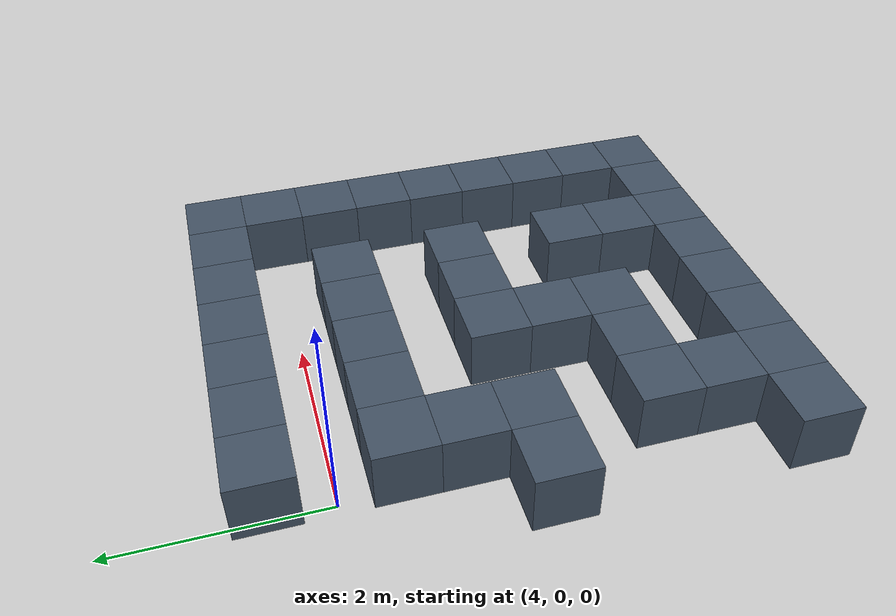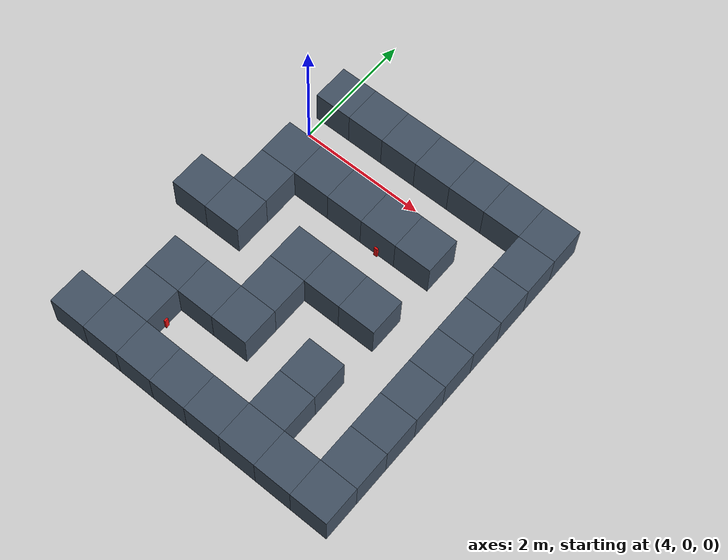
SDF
<sdf version="1.9">
 <world name="limo_maze">
  <model name="wall_8_0">
   <static>true</static>
   <pose>4.2 0.6 0.3 0 0 0</pose>
   <link name="body">
    <collision name="collision"><geometry><box><size>0.6 0.6 0.6</size></box></geometry></collision>
    <visual name="visual">
     <geometry><box><size>0.6 0.6 0.6</size></box></geometry>
     <material><ambient>0.26 0.32 0.39 1</ambient><diffuse>0.26 0.32 0.39 1</diffuse></material>
    </visual>
   </link>
  </model>
  <model name="wall_9_0">
   <static>true</static>
   <pose>4.8 0.6 0.3 0 0 0</pose>
   <link name="body">
    <collision name="collision"><geometry><box><size>0.6 0.6 0.6</size></box></geometry></collision>
    <visual name="visual">
     <geometry><box><size>0.6 0.6 0.6</size></box></geometry>
     <material><ambient>0.26 0.32 0.39 1</ambient><diffuse>0.26 0.32 0.39 1</diffuse></material>
    </visual>
   </link>
  </model>
  <model name="wall_10_0">
   <static>true</static>
   <pose>5.3999999999999995 0.6 0.3 0 0 0</pose>
   <link name="body">
    <collision name="collision"><geometry><box><size>0.6 0.6 0.6</size></box></geometry></collision>
    <visual name="visual">
     <geometry><box><size>0.6 0.6 0.6</size></box></geometry>
     <material><ambient>0.26 0.32 0.39 1</ambient><diffuse>0.26 0.32 0.39 1</diffuse></material>
    </visual>
   </link>
  </model>
  <model name="wall_11_0">
   <static>true</static>
   <pose>6.0 0.6 0.3 0 0 0</pose>
   <link name="body">
    <collision name="collision"><geometry><box><size>0.6 0.6 0.6</size></box></geometry></collision>
    <visual name="visual">
     <geometry><box><size>0.6 0.6 0.6</size></box></geometry>
     <material><ambient>0.26 0.32 0.39 1</ambient><diffuse>0.26 0.32 0.39 1</diffuse></material>
    </visual>
   </link>
  </model>
  <model name="wall_12_0">
   <static>true</static>
   <pose>6.6 0.6 0.3 0 0 0</pose>
   <link name="body">
    <collision name="collision"><geometry><box><size>0.6 0.6 0.6</size></box></geometry></collision>
    <visual name="visual">
     <geometry><box><size>0.6 0.6 0.6</size></box></geometry>
     <material><ambient>0.26 0.32 0.39 1</ambient><diffuse>0.26 0.32 0.39 1</diffuse></material>
    </visual>
   </link>
  </model>
  <model name="wall_13_0">
   <static>true</static>
   <pose>7.199999999999999 0.6 0.3 0 0 0</pose>
   <link name="body">
    <collision name="collision"><geometry><box><size>0.6 0.6 0.6</size></box></geometry></collision>
    <visual name="visual">
     <geometry><box><size>0.6 0.6 0.6</size></box></geometry>
     <material><ambient>0.26 0.32 0.39 1</ambient><diffuse>0.26 0.32 0.39 1</diffuse></material>
    </visual>
   </link>
  </model>
  <model name="wall_14_0">
   <static>true</static>
   <pose>7.8 0.6 0.3 0 0 0</pose>
   <link name="body">
    <collision name="collision"><geometry><box><size>0.6 0.6 0.6</size></box></geometry></collision>
    <visual name="visual">
     <geometry><box><size>0.6 0.6 0.6</size></box></geometry>
     <material><ambient>0.26 0.32 0.39 1</ambient><diffuse>0.26 0.32 0.39 1</diffuse></material>
    </visual>
   </link>
  </model>
  <model name="wall_14_1">
   <static>true</static>
   <pose>7.8 0.0 0.3 0 0 0</pose>
   <link name="body">
    <collision name="collision"><geometry><box><size>0.6 0.6 0.6</size></box></geometry></collision>
    <visual name="visual">
     <geometry><box><size>0.6 0.6 0.6</size></box></geometry>
     <material><ambient>0.26 0.32 0.39 1</ambient><diffuse>0.26 0.32 0.39 1</diffuse></material>
    </visual>
   </link>
  </model>
  <model name="wall_8_2">
   <static>true</static>
   <pose>4.2 -0.6 0.3 0 0 0</pose>
   <link name="body">
    <collision name="collision"><geometry><box><size>0.6 0.6 0.6</size></box></geometry></collision>
    <visual name="visual">
     <geometry><box><size>0.6 0.6 0.6</size></box></geometry>
     <material><ambient>0.26 0.32 0.39 1</ambient><diffuse>0.26 0.32 0.39 1</diffuse></material>
    </visual>
   </link>
  </model>
  <model name="wall_9_2">
   <static>true</static>
   <pose>4.8 -0.6 0.3 0 0 0</pose>
   <link name="body">
    <collision name="collision"><geometry><box><size>0.6 0.6 0.6</size></box></geometry></collision>
    <visual name="visual">
     <geometry><box><size>0.6 0.6 0.6</size></box></geometry>
     <material><ambient>0.26 0.32 0.39 1</ambient><diffuse>0.26 0.32 0.39 1</diffuse></material>
    </visual>
   </link>
  </model>
  <model name="wall_10_2">
   <static>true</static>
   <pose>5.3999999999999995 -0.6 0.3 0 0 0</pose>
   <link name="body">
    <collision name="collision"><geometry><box><size>0.6 0.6 0.6</size></box></geometry></collision>
    <visual name="visual">
     <geometry><box><size>0.6 0.6 0.6</size></box></geometry>
     <material><ambient>0.26 0.32 0.39 1</ambient><diffuse>0.26 0.32 0.39 1</diffuse></material>
    </visual>
   </link>
  </model>
  <model name="wall_11_2">
   <static>true</static>
   <pose>6.0 -0.6 0.3 0 0 0</pose>
   <link name="body">
    <collision name="collision"><geometry><box><size>0.6 0.6 0.6</size></box></geometry></collision>
    <visual name="visual">
     <geometry><box><size>0.6 0.6 0.6</size></box></geometry>
     <material><ambient>0.26 0.32 0.39 1</ambient><diffuse>0.26 0.32 0.39 1</diffuse></material>
    </visual>
   </link>
  </model>
  <model name="wall_12_2">
   <static>true</static>
   <pose>6.6 -0.6 0.3 0 0 0</pose>
   <link name="body">
    <collision name="collision"><geometry><box><size>0.6 0.6 0.6</size></box></geometry></collision>
    <visual name="visual">
     <geometry><box><size>0.6 0.6 0.6</size></box></geometry>
     <material><ambient>0.26 0.32 0.39 1</ambient><diffuse>0.26 0.32 0.39 1</diffuse></material>
    </visual>
   </link>
  </model>
  <model name="wall_14_2">
   <static>true</static>
   <pose>7.8 -0.6 0.3 0 0 0</pose>
   <link name="body">
    <collision name="collision"><geometry><box><size>0.6 0.6 0.6</size></box></geometry></collision>
    <visual name="visual">
     <geometry><box><size>0.6 0.6 0.6</size></box></geometry>
     <material><ambient>0.26 0.32 0.39 1</ambient><diffuse>0.26 0.32 0.39 1</diffuse></material>
    </visual>
   </link>
  </model>
  <model name="wall_8_3">
   <static>true</static>
   <pose>4.2 -1.2 0.3 0 0 0</pose>
   <link name="body">
    <collision name="collision"><geometry><box><size>0.6 0.6 0.6</size></box></geometry></collision>
    <visual name="visual">
     <geometry><box><size>0.6 0.6 0.6</size></box></geometry>
     <material><ambient>0.26 0.32 0.39 1</ambient><diffuse>0.26 0.32 0.39 1</diffuse></material>
    </visual>
   </link>
  </model>
  <model name="wall_14_3">
   <static>true</static>
   <pose>7.8 -1.2 0.3 0 0 0</pose>
   <link name="body">
    <collision name="collision"><geometry><box><size>0.6 0.6 0.6</size></box></geometry></collision>
    <visual name="visual">
     <geometry><box><size>0.6 0.6 0.6</size></box></geometry>
     <material><ambient>0.26 0.32 0.39 1</ambient><diffuse>0.26 0.32 0.39 1</diffuse></material>
    </visual>
   </link>
  </model>
  <model name="wall_7_4">
   <static>true</static>
   <pose>3.5999999999999996 -1.7999999999999998 0.3 0 0 0</pose>
   <link name="body">
    <collision name="collision"><geometry><box><size>0.6 0.6 0.6</size></box></geometry></collision>
    <visual name="visual">
     <geometry><box><size>0.6 0.6 0.6</size></box></geometry>
     <material><ambient>0.26 0.32 0.39 1</ambient><diffuse>0.26 0.32 0.39 1</diffuse></material>
    </visual>
   </link>
  </model>
  <model name="wall_8_4">
   <static>true</static>
   <pose>4.2 -1.7999999999999998 0.3 0 0 0</pose>
   <link name="body">
    <collision name="collision"><geometry><box><size>0.6 0.6 0.6</size></box></geometry></collision>
    <visual name="visual">
     <geometry><box><size>0.6 0.6 0.6</size></box></geometry>
     <material><ambient>0.26 0.32 0.39 1</ambient><diffuse>0.26 0.32 0.39 1</diffuse></material>
    </visual>
   </link>
  </model>
  <model name="wall_10_4">
   <static>true</static>
   <pose>5.3999999999999995 -1.7999999999999998 0.3 0 0 0</pose>
   <link name="body">
    <collision name="collision"><geometry><box><size>0.6 0.6 0.6</size></box></geometry></collision>
    <visual name="visual">
     <geometry><box><size>0.6 0.6 0.6</size></box></geometry>
     <material><ambient>0.26 0.32 0.39 1</ambient><diffuse>0.26 0.32 0.39 1</diffuse></material>
    </visual>
   </link>
  </model>
  <model name="wall_11_4">
   <static>true</static>
   <pose>6.0 -1.7999999999999998 0.3 0 0 0</pose>
   <link name="body">
    <collision name="collision"><geometry><box><size>0.6 0.6 0.6</size></box></geometry></collision>
    <visual name="visual">
     <geometry><box><size>0.6 0.6 0.6</size></box></geometry>
     <material><ambient>0.26 0.32 0.39 1</ambient><diffuse>0.26 0.32 0.39 1</diffuse></material>
    </visual>
   </link>
  </model>
  <model name="wall_12_4">
   <static>true</static>
   <pose>6.6 -1.7999999999999998 0.3 0 0 0</pose>
   <link name="body">
    <collision name="collision"><geometry><box><size>0.6 0.6 0.6</size></box></geometry></collision>
    <visual name="visual">
     <geometry><box><size>0.6 0.6 0.6</size></box></geometry>
     <material><ambient>0.26 0.32 0.39 1</ambient><diffuse>0.26 0.32 0.39 1</diffuse></material>
    </visual>
   </link>
  </model>
  <model name="wall_14_4">
   <static>true</static>
   <pose>7.8 -1.7999999999999998 0.3 0 0 0</pose>
   <link name="body">
    <collision name="collision"><geometry><box><size>0.6 0.6 0.6</size></box></geometry></collision>
    <visual name="visual">
     <geometry><box><size>0.6 0.6 0.6</size></box></geometry>
     <material><ambient>0.26 0.32 0.39 1</ambient><diffuse>0.26 0.32 0.39 1</diffuse></material>
    </visual>
   </link>
  </model>
  <model name="wall_10_5">
   <static>true</static>
   <pose>5.3999999999999995 -2.4 0.3 0 0 0</pose>
   <link name="body">
    <collision name="collision"><geometry><box><size>0.6 0.6 0.6</size></box></geometry></collision>
    <visual name="visual">
     <geometry><box><size>0.6 0.6 0.6</size></box></geometry>
     <material><ambient>0.26 0.32 0.39 1</ambient><diffuse>0.26 0.32 0.39 1</diffuse></material>
    </visual>
   </link>
  </model>
  <model name="wall_14_5">
   <static>true</static>
   <pose>7.8 -2.4 0.3 0 0 0</pose>
   <link name="body">
    <collision name="collision"><geometry><box><size>0.6 0.6 0.6</size></box></geometry></collision>
    <visual name="visual">
     <geometry><box><size>0.6 0.6 0.6</size></box></geometry>
     <material><ambient>0.26 0.32 0.39 1</ambient><diffuse>0.26 0.32 0.39 1</diffuse></material>
    </visual>
   </link>
  </model>
  <model name="wall_8_6">
   <static>true</static>
   <pose>4.2 -3.0 0.3 0 0 0</pose>
   <link name="body">
    <collision name="collision"><geometry><box><size>0.6 0.6 0.6</size></box></geometry></collision>
    <visual name="visual">
     <geometry><box><size>0.6 0.6 0.6</size></box></geometry>
     <material><ambient>0.26 0.32 0.39 1</ambient><diffuse>0.26 0.32 0.39 1</diffuse></material>
    </visual>
   </link>
  </model>
  <model name="wall_9_6">
   <static>true</static>
   <pose>4.8 -3.0 0.3 0 0 0</pose>
   <link name="body">
    <collision name="collision"><geometry><box><size>0.6 0.6 0.6</size></box></geometry></collision>
    <visual name="visual">
     <geometry><box><size>0.6 0.6 0.6</size></box></geometry>
     <material><ambient>0.26 0.32 0.39 1</ambient><diffuse>0.26 0.32 0.39 1</diffuse></material>
    </visual>
   </link>
  </model>
  <model name="wall_10_6">
   <static>true</static>
   <pose>5.3999999999999995 -3.0 0.3 0 0 0</pose>
   <link name="body">
    <collision name="collision"><geometry><box><size>0.6 0.6 0.6</size></box></geometry></collision>
    <visual name="visual">
     <geometry><box><size>0.6 0.6 0.6</size></box></geometry>
     <material><ambient>0.26 0.32 0.39 1</ambient><diffuse>0.26 0.32 0.39 1</diffuse></material>
    </visual>
   </link>
  </model>
  <model name="wall_12_6">
   <static>true</static>
   <pose>6.6 -3.0 0.3 0 0 0</pose>
   <link name="body">
    <collision name="collision"><geometry><box><size>0.6 0.6 0.6</size></box></geometry></collision>
    <visual name="visual">
     <geometry><box><size>0.6 0.6 0.6</size></box></geometry>
     <material><ambient>0.26 0.32 0.39 1</ambient><diffuse>0.26 0.32 0.39 1</diffuse></material>
    </visual>
   </link>
  </model>
  <model name="wall_14_6">
   <static>true</static>
   <pose>7.8 -3.0 0.3 0 0 0</pose>
   <link name="body">
    <collision name="collision"><geometry><box><size>0.6 0.6 0.6</size></box></geometry></collision>
    <visual name="visual">
     <geometry><box><size>0.6 0.6 0.6</size></box></geometry>
     <material><ambient>0.26 0.32 0.39 1</ambient><diffuse>0.26 0.32 0.39 1</diffuse></material>
    </visual>
   </link>
  </model>
  <model name="wall_8_7">
   <static>true</static>
   <pose>4.2 -3.5999999999999996 0.3 0 0 0</pose>
   <link name="body">
    <collision name="collision"><geometry><box><size>0.6 0.6 0.6</size></box></geometry></collision>
    <visual name="visual">
     <geometry><box><size>0.6 0.6 0.6</size></box></geometry>
     <material><ambient>0.26 0.32 0.39 1</ambient><diffuse>0.26 0.32 0.39 1</diffuse></material>
    </visual>
   </link>
  </model>
  <model name="wall_12_7">
   <static>true</static>
   <pose>6.6 -3.5999999999999996 0.3 0 0 0</pose>
   <link name="body">
    <collision name="collision"><geometry><box><size>0.6 0.6 0.6</size></box></geometry></collision>
    <visual name="visual">
     <geometry><box><size>0.6 0.6 0.6</size></box></geometry>
     <material><ambient>0.26 0.32 0.39 1</ambient><diffuse>0.26 0.32 0.39 1</diffuse></material>
    </visual>
   </link>
  </model>
  <model name="wall_14_7">
   <static>true</static>
   <pose>7.8 -3.5999999999999996 0.3 0 0 0</pose>
   <link name="body">
    <collision name="collision"><geometry><box><size>0.6 0.6 0.6</size></box></geometry></collision>
    <visual name="visual">
     <geometry><box><size>0.6 0.6 0.6</size></box></geometry>
     <material><ambient>0.26 0.32 0.39 1</ambient><diffuse>0.26 0.32 0.39 1</diffuse></material>
    </visual>
   </link>
  </model>
  <model name="wall_7_8">
   <static>true</static>
   <pose>3.5999999999999996 -4.2 0.3 0 0 0</pose>
   <link name="body">
    <collision name="collision"><geometry><box><size>0.6 0.6 0.6</size></box></geometry></collision>
    <visual name="visual">
     <geometry><box><size>0.6 0.6 0.6</size></box></geometry>
     <material><ambient>0.26 0.32 0.39 1</ambient><diffuse>0.26 0.32 0.39 1</diffuse></material>
    </visual>
   </link>
  </model>
  <model name="wall_8_8">
   <static>true</static>
   <pose>4.2 -4.2 0.3 0 0 0</pose>
   <link name="body">
    <collision name="collision"><geometry><box><size>0.6 0.6 0.6</size></box></geometry></collision>
    <visual name="visual">
     <geometry><box><size>0.6 0.6 0.6</size></box></geometry>
     <material><ambient>0.26 0.32 0.39 1</ambient><diffuse>0.26 0.32 0.39 1</diffuse></material>
    </visual>
   </link>
  </model>
  <model name="wall_9_8">
   <static>true</static>
   <pose>4.8 -4.2 0.3 0 0 0</pose>
   <link name="body">
    <collision name="collision"><geometry><box><size>0.6 0.6 0.6</size></box></geometry></collision>
    <visual name="visual">
     <geometry><box><size>0.6 0.6 0.6</size></box></geometry>
     <material><ambient>0.26 0.32 0.39 1</ambient><diffuse>0.26 0.32 0.39 1</diffuse></material>
    </visual>
   </link>
  </model>
  <model name="wall_10_8">
   <static>true</static>
   <pose>5.3999999999999995 -4.2 0.3 0 0 0</pose>
   <link name="body">
    <collision name="collision"><geometry><box><size>0.6 0.6 0.6</size></box></geometry></collision>
    <visual name="visual">
     <geometry><box><size>0.6 0.6 0.6</size></box></geometry>
     <material><ambient>0.26 0.32 0.39 1</ambient><diffuse>0.26 0.32 0.39 1</diffuse></material>
    </visual>
   </link>
  </model>
  <model name="wall_11_8">
   <static>true</static>
   <pose>6.0 -4.2 0.3 0 0 0</pose>
   <link name="body">
    <collision name="collision"><geometry><box><size>0.6 0.6 0.6</size></box></geometry></collision>
    <visual name="visual">
     <geometry><box><size>0.6 0.6 0.6</size></box></geometry>
     <material><ambient>0.26 0.32 0.39 1</ambient><diffuse>0.26 0.32 0.39 1</diffuse></material>
    </visual>
   </link>
  </model>
  <model name="wall_12_8">
   <static>true</static>
   <pose>6.6 -4.2 0.3 0 0 0</pose>
   <link name="body">
    <collision name="collision"><geometry><box><size>0.6 0.6 0.6</size></box></geometry></collision>
    <visual name="visual">
     <geometry><box><size>0.6 0.6 0.6</size></box></geometry>
     <material><ambient>0.26 0.32 0.39 1</ambient><diffuse>0.26 0.32 0.39 1</diffuse></material>
    </visual>
   </link>
  </model>
  <model name="wall_13_8">
   <static>true</static>
   <pose>7.199999999999999 -4.2 0.3 0 0 0</pose>
   <link name="body">
    <collision name="collision"><geometry><box><size>0.6 0.6 0.6</size></box></geometry></collision>
    <visual name="visual">
     <geometry><box><size>0.6 0.6 0.6</size></box></geometry>
     <material><ambient>0.26 0.32 0.39 1</ambient><diffuse>0.26 0.32 0.39 1</diffuse></material>
    </visual>
   </link>
  </model>
  <model name="wall_14_8">
   <static>true</static>
   <pose>7.8 -4.2 0.3 0 0 0</pose>
   <link name="body">
    <collision name="collision"><geometry><box><size>0.6 0.6 0.6</size></box></geometry></collision>
    <visual name="visual">
     <geometry><box><size>0.6 0.6 0.6</size></box></geometry>
     <material><ambient>0.26 0.32 0.39 1</ambient><diffuse>0.26 0.32 0.39 1</diffuse></material>
    </visual>
   </link>
  </model>
  <model name="target_surrogate_1">
   <static>true</static>
   <pose>6.0 -0.915 0.1 0 0 0</pose>
   <link name="body">
    <collision name="collision"><geometry><box><size>0.06 0.03 0.2</size></box></geometry></collision>
    <visual name="visual">
     <geometry><box><size>0.06 0.03 0.2</size></box></geometry>
     <material><ambient>0.9 0.05 0.05 1</ambient><diffuse>0.9 0.05 0.05 1</diffuse></material>
    </visual>
   </link>
  </model>
  <model name="target_surrogate_2">
   <static>true</static>
   <pose>4.515 -3.5999999999999996 0.1 0 0 0</pose>
   <link name="body">
    <collision name="collision"><geometry><box><size>0.03 0.06 0.2</size></box></geometry></collision>
    <visual name="visual">
     <geometry><box><size>0.03 0.06 0.2</size></box></geometry>
     <material><ambient>0.9 0.05 0.05 1</ambient><diffuse>0.9 0.05 0.05 1</diffuse></material>
    </visual>
   </link>
  </model>
 </world>
</sdf>
